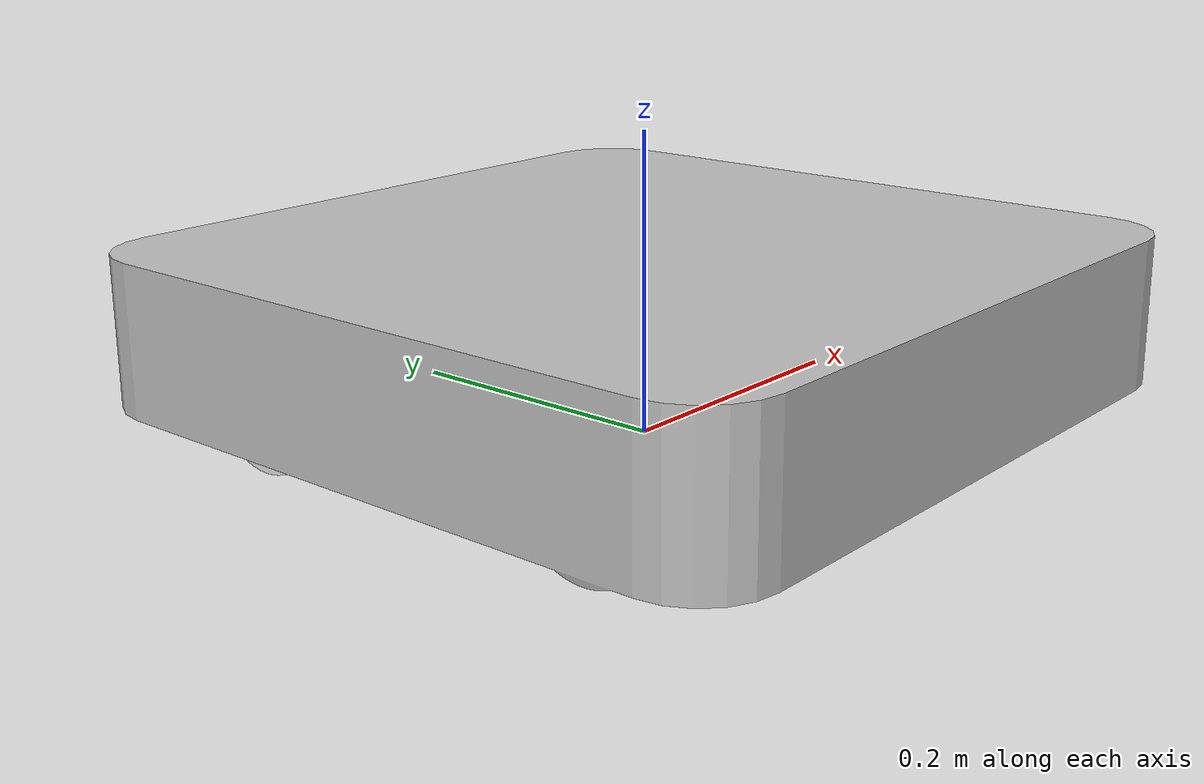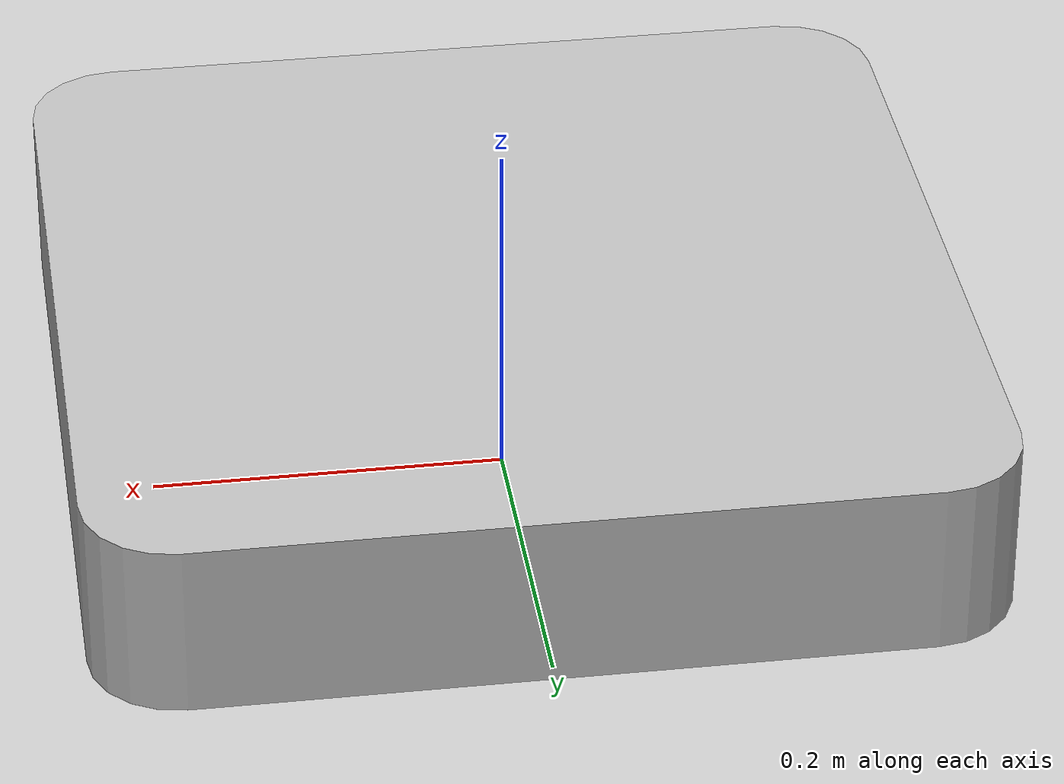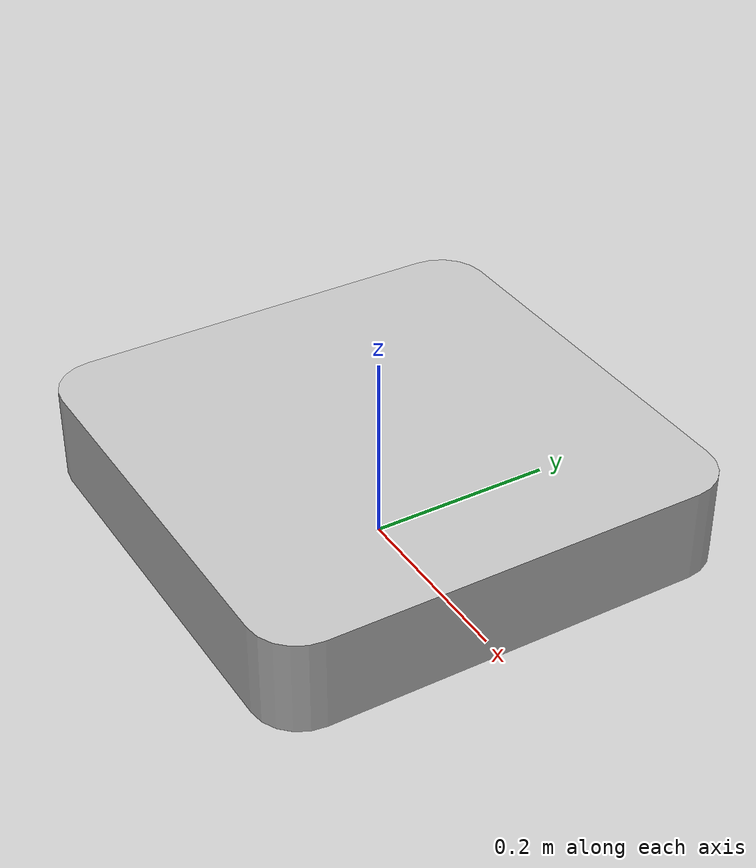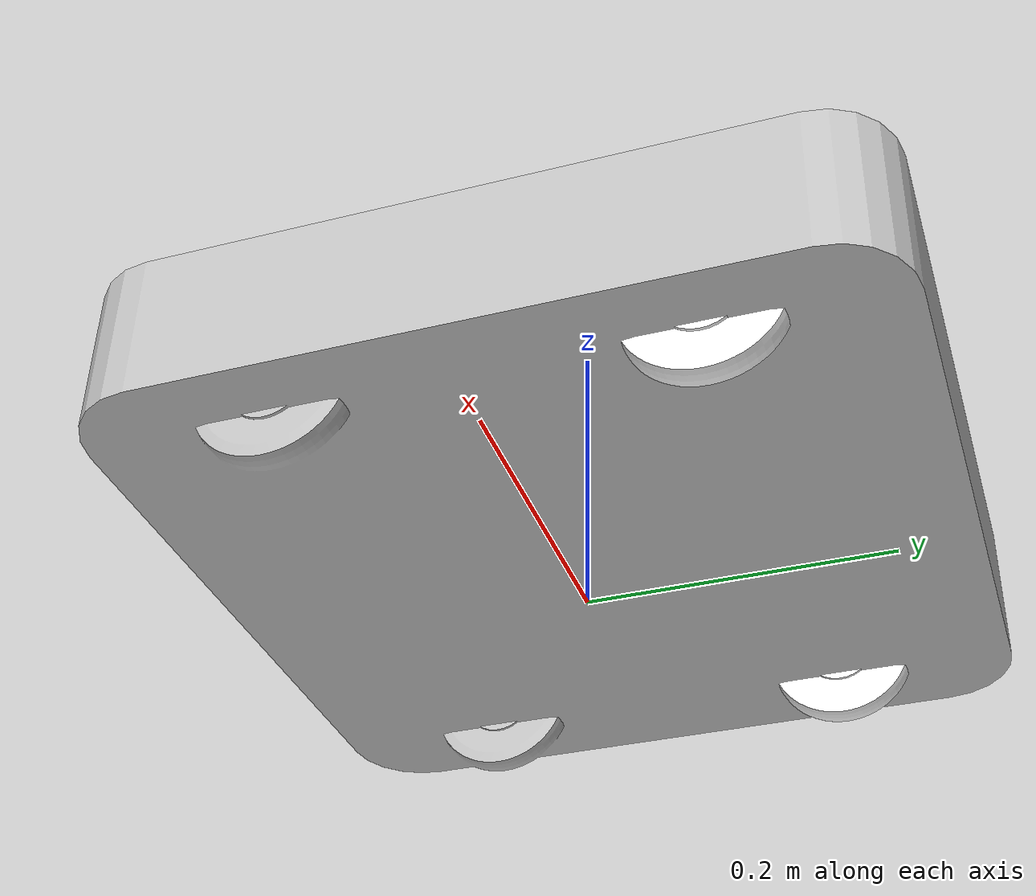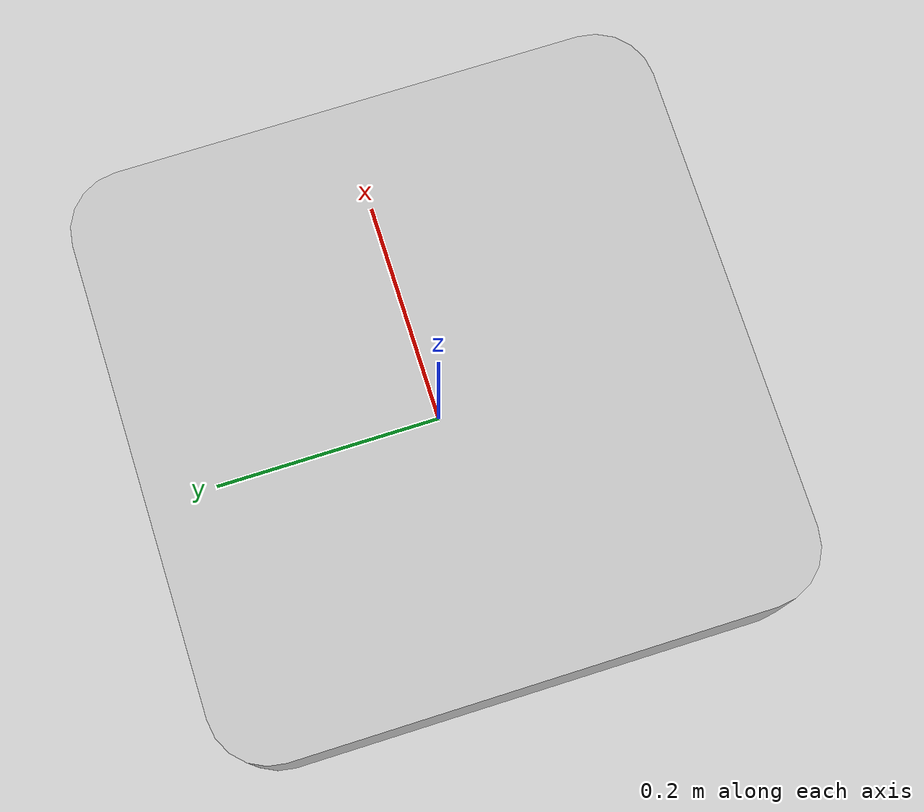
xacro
<?xml version="1.0"?>
<robot name="rbt" xmlns:xacro="http://www.ros.org/wiki/xacro">
 <xacro:include filename="$(find rbt_gazebo)/robots/rbt.gazebo.xacro" />
  <link
    name="base_link">
    <inertial>
      <origin
        xyz="1.5170507548791E-17 -0.000197277236774495 0.0803276867224908"
        rpy="0 0 0" />
      <mass
        value="190.047063870531" />
      <inertia
        ixx="0.00513222256327552"
        ixy="1.43114686768087E-17"
        ixz="3.46944695195361E-18"
        iyy="0.0118016516978085"
        iyz="-0.00113704440589145"
        izz="0.0164025460146906" />
    </inertial>
    <visual>
      <origin
        xyz="0 0 0"
        rpy="0 0 0" />
      <geometry>
        <mesh
          filename="package://rbt_description/meshes/base_link.STL" />
      </geometry>
      <material
        name="">
        <color
          rgba="0.752941176470588 0.752941176470588 0.752941176470588 1" />
      </material>
    </visual>
    <collision>
      <origin
        xyz="0 0 0"
        rpy="0 0 0" />
      <geometry>
        <mesh
          filename="package://rbt_description/meshes/base_link.STL" />
      </geometry>
    </collision>
  </link>
  <link
    name="l_wheel_link">
    <inertial>
      <origin
        xyz="0 0 0.015"
        rpy="0 0 0" />
      <mass
        value="0.144199844682647" />
      <inertia
        ixx="0"
        ixy="0"
        ixz="0"
        iyy="0"
        iyz="0"
        izz="0" />
    </inertial>
    <visual>
      <origin
        xyz="0 0 0"
        rpy="0 0 0" />
      <geometry>
        <mesh
          filename="package://rbt_description/meshes/l_wheel_link.STL" />
      </geometry>
      <material
        name="">
        <color
          rgba="1 1 1 1" />
      </material>
    </visual>
    <collision>
      <origin
        xyz="0 0 0"
        rpy="0 0 0" />
      <geometry>
        <mesh
          filename="package://rbt_description/meshes/l_wheel_link.STL" />
      </geometry>
    </collision>
  </link>
  <joint
    name="l_wheel_joint"
    type="continuous">
    <origin
      xyz="0.185 0.13 0.05"
      rpy="1.5707963267949 6.12303176911189E-17 1.5707963267949" />
    <parent
      link="base_link" />
    <child
      link="l_wheel_link" />
    <axis
      xyz="0 0 1" />
  </joint>
  <link
    name="r_wheel_link">
    <inertial>
      <origin
        xyz="-5.55111512312578E-17 6.93889390390723E-18 -0.015"
        rpy="0 0 0" />
      <mass
        value="0.144199844682647" />
      <inertia
        ixx="0"
        ixy="0"
        ixz="0"
        iyy="0"
        iyz="0"
        izz="0" />
    </inertial>
    <visual>
      <origin
        xyz="0 0 0"
        rpy="0 0 0" />
      <geometry>
        <mesh
          filename="package://rbt_description/meshes/r_wheel_link.STL" />
      </geometry>
      <material
        name="">
        <color
          rgba="1 1 1 1" />
      </material>
    </visual>
    <collision>
      <origin
        xyz="0 0 0"
        rpy="0 0 0" />
      <geometry>
        <mesh
          filename="package://rbt_description/meshes/r_wheel_link.STL" />
      </geometry>
    </collision>
  </link>
  <joint
    name="r_wheel_joint"
    type="continuous">
    <origin
      xyz="-0.185 0.129999999999999 0.0500000000000007"
      rpy="1.5707963267949 6.12303176911189E-17 1.5707963267949" />
    <parent
      link="base_link" />
    <child
      link="r_wheel_link" />
    <axis
      xyz="0 0 1" />
  </joint>
</robot>
